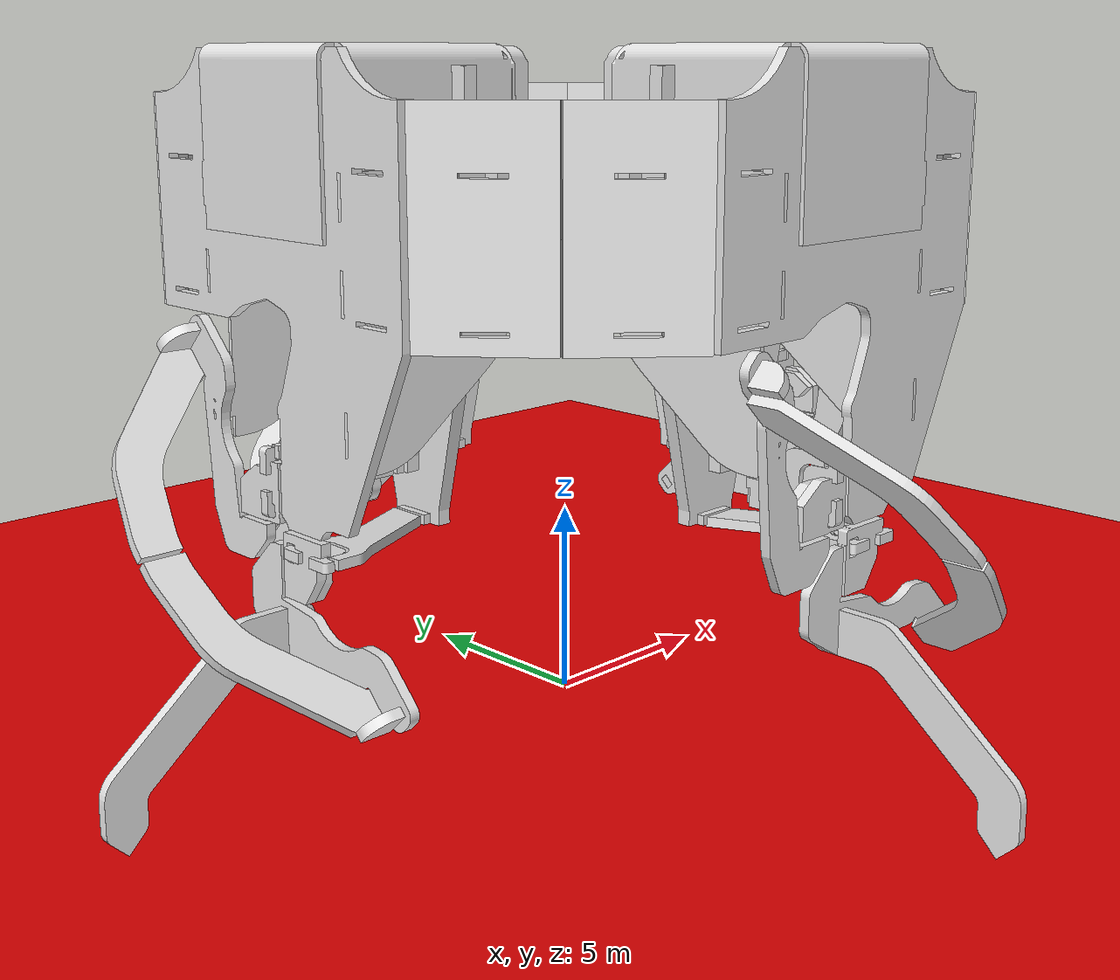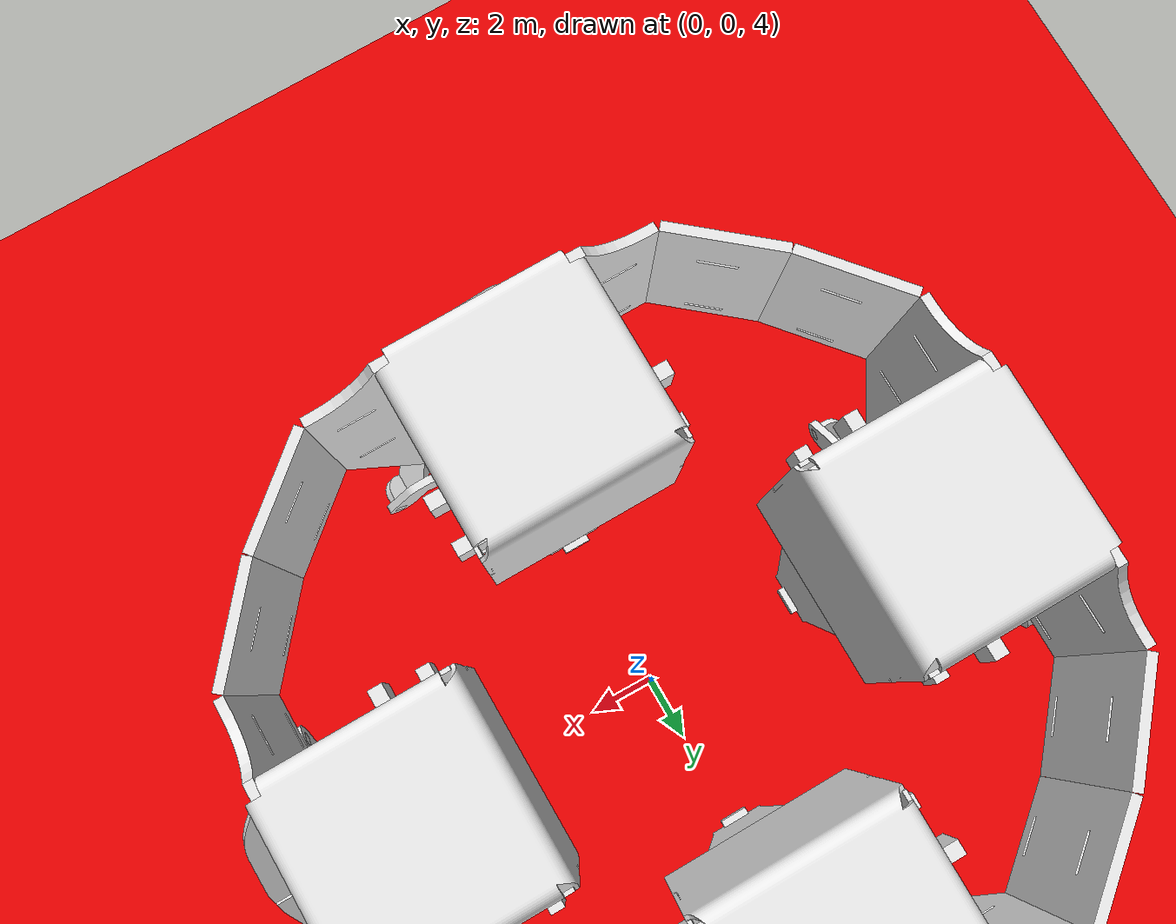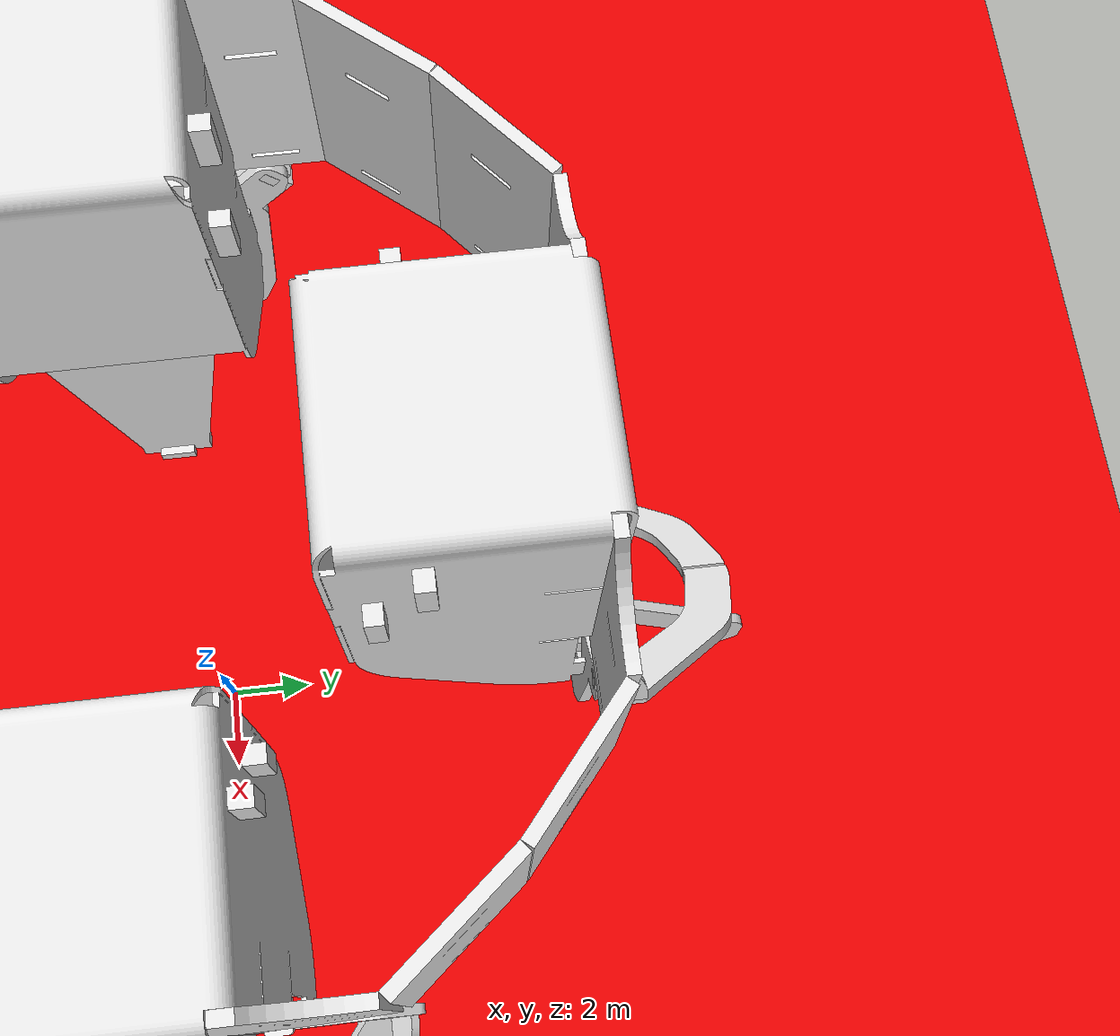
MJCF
<mujoco>
    <asset>
		<mesh file="STL_files/p_leg.STL"/>
		<mesh file="STL_files/p_leg_frame-1.STL"/>
		<mesh file="STL_files/p_leg_frame_segment_extension-1.STL"/>
		<mesh file="STL_files/p_leg_frame_segment_extension-2.STL"/>
		<mesh file="STL_files/p_leg_frame_support-1.STL"/>
		<mesh file="STL_files/p_leg_l_u1-1.STL"/>
		<mesh file="STL_files/p_leg_l_u2-2.STL"/>
		<mesh file="STL_files/p_leg_l_u3-2.STL"/>
		<mesh file="STL_files/p_leg_l_u4-1.STL"/>
		<mesh file="STL_files/p_leg_l_u5-1.STL"/>
		<mesh file="STL_files/p_leg_l_us1-1.STL"/>
		<mesh file="STL_files/p_leg_l_us2-1.STL"/>
		<mesh file="STL_files/p_leg_l_us3-1.STL"/>
		<mesh file="STL_files/p_leg_l_us3-2.STL"/>
		<mesh file="STL_files/p_leg_s_u1-1.STL"/>
		<mesh file="STL_files/p_leg_s_u2-1.STL"/>
		<mesh file="STL_files/p_leg_s_u3-1.STL"/>
		<mesh file="STL_files/p_leg_s_u4-1.STL"/>
		<mesh file="STL_files/p_leg_s_u5-1.STL"/>
		<mesh file="STL_files/p_leg_s_u6-1.STL"/>
		<mesh file="STL_files/p_leg_s_u7-1.STL"/>
		<mesh file="STL_files/p_leg_s_us1-1.STL"/>
		<mesh file="STL_files/p_leg_s_us2-1.STL"/>
		<mesh file="STL_files/p_pcb-1.STL"/>
		<mesh file="STL_files/p_pzt_1_1.STL"/>
		<mesh file="STL_files/p_pzt_1_2.STL"/>
		<mesh file="STL_files/p_pzt_2_1.STL"/>
		<mesh file="STL_files/p_pzt_2_2.STL"/>
	</asset>

    <default>
		<geom density="0.002"/>
	</default>

	<option gravity="0 0 -9.810"/>

	<worldbody>
        <light diffuse="1 1 1" pos="0 0 1000" dir="0 0 -1"/>
		<geom type="plane" size="1000 1000 0.1" rgba=".9 0 0 1"/>
		<camera name="closeup" pos="55.989 33.954 23.285" xyaxes="-0.462 0.887 -0.000 -0.252 -0.131 0.959"/>

        <body pos="-6.985 0.254 0" euler ="90 0 0" name="p_pcb-1_1" >

			<geom type="mesh" mesh="p_pcb-1" rgba="0.9 0.9 0.9 1"/>
			<joint type="free"/>

			<body pos="0 0 0" name="p_pzt_1_1_1">
				<geom type="mesh" mesh="p_pzt_1_1" rgba="0.9 .9 0.9 1" mass="1"/>
				<body pos="0 0 0" name="p_pzt_1_2_1">
					<geom type="mesh" mesh="p_pzt_1_2" rgba="0.9 .9 0.9 1" mass="1"/>
					<joint name="p_pzt_1_1" type="hinge" axis="1 0 0" pos="3.984 14.141 5.13" range="-2.73 2.73"/>
					<site name="p_pzt_1_1_1_1" pos="6.973 6.019 5.156"/>
					<site name="p_pzt_1_1_1_2" pos="7.473 5.919 5.156"/>
					<site name="p_pzt_1_1_1_3" pos="6.473 5.919 5.156"/>
				</body>
			</body>

			<body pos="0 0 0" name="p_pzt_2_1_1">
				<geom type="mesh" mesh="p_pzt_2_1" rgba="0.9 .9 0.9 1" mass="1"/>
				<body pos="0 0 0" name="p_pzt_2_2_1">
					<geom type="mesh" mesh="p_pzt_2_2" rgba="0.9 .9 0.9 1" mass="1"/>
					<joint name="p_pzt_2_1" type="hinge" axis="1 0 0" pos="3.984 15.641 6.05" range="-2.73 2.73"/>
				</body>
			</body>

			<body pos="0 0 0" name="p_leg_frame-1_1">
				<geom type="mesh" mesh="p_leg_frame-1" rgba="0.9 .9 0.9 1"/>

                <!-- extensions for the multi-legged simulation-->
				<body pos="0 0 0" name="p_leg_frame_segment_extension-1_1">
					<geom type="mesh" mesh="p_leg_frame_segment_extension-1" rgba="0.9 .9 0.9 1"/>
				</body>
				<body pos="0 0 0" name="p_leg_frame_segment_extension-2_1">
					<geom type="mesh" mesh="p_leg_frame_segment_extension-2" rgba="0.9 .9 0.9 1"/>
				</body>

                <!-- lift section -->

				<body pos="0 0 0" name="p_leg_l_u1-1_1">
					<geom type="mesh" mesh="p_leg_l_u1-1" rgba="0.9 .9 0.9 1"/>
					<joint type="hinge" limited="true" range="-28.0 28.0" stiffness="20480" springref="0.0" damping="1024" axis="1 0 0" pos="7.885 6.419 9.106"/>
					<body pos="0 0 0">
						<geom type="mesh" mesh="p_leg_l_u2-2" rgba="0.9 .9 0.9 1"/>
					</body>

                    <!-- lift actuator -->

					<body pos="0 0 0" name="p_leg_l_u3-2_1">
						<geom type="mesh" mesh="p_leg_l_u3-2" rgba="0.9 .9 0.9 1"/>
						<body pos="0 0 0" euler ="0 0 0">
							<geom type="mesh" mesh="p_leg_l_u4-1" rgba="0.9 0.9 0.9 1"/>
                            <joint type="hinge" limited="true" range="-28.0 28.0" stiffness="10240" springref="0.0" damping="512" axis="1 0 0" pos="7.986 5.919 9.056"  />
                            <body pos="0 0 0" name="p_leg_l_u5-1_1">
                                <geom type="mesh" mesh="p_leg_l_u5-1" rgba="0.9 .9 0.9 1"/>
                                <joint type="hinge" limited="true" range="-28.0 28.0" stiffness="17067" springref="0.0" damping="853" axis="1 0 0" pos="6.973 5.919 5.556" />
								<site name="p_pzt_1_1_2_1" pos="6.973 6.019 5.156"/>
								<site name="p_pzt_1_1_2_2" pos="7.473 5.919 5.156"/>
								<site name="p_pzt_1_1_2_3" pos="6.473 5.919 5.156"/>
                            </body>
						</body>
					</body>

                    <!-- lift end-effector -->
					<body pos="0 0 0" >
						<geom type="mesh" mesh="p_leg_l_us1-1" rgba="0.9 .9 0.9 1"/>
						<joint type="hinge" limited="true" range="-28.0 28.0" stiffness="20480" springref="0.0" damping="1024" axis="0 1 0" pos="6.985 5.419 9.106"/>
						<body pos="0 0 0">
							<geom type="mesh" mesh="p_leg_l_us3-2" rgba="0.9 .9 0.9 1"/>
							<body pos="0 0 0" name="p_leg_l_us2-1_1">
								<geom type="mesh" mesh="p_leg_l_us2-1" rgba="0.9 .9 0.9 1"/>
							</body>
						</body>
						<body pos="0 0 0" >
							<geom type="mesh" mesh="p_leg" rgba="0.9 .9 0.9 1"/>
						</body>
					</body>

				</body>

                <!-- swing section -->

				<body pos="0 0 0" name="p_leg_s_u1-1_1">

					<geom type="mesh" mesh="p_leg_s_u1-1" rgba="0.9 .9 0.9 1"/>
					<joint type="hinge" limited="true" range="-28.0 28.0" stiffness="20480" springref="0.0" damping="1024" axis="0 1 0" pos="6.985 7.319 9.106"/>
					<body pos="0 0 0">
						<geom type="mesh" mesh="p_leg_s_u2-1" rgba="0.9 .9 0.9 1"/>
					</body>

                    <!-- swing actuator -->

                    <body pos="0 0 0" name="p_leg_s_u3-1_1">
                        <geom type="mesh" mesh="p_leg_s_u3-1" rgba="0.9 .9 0.9 1"/>
                        <body pos="0 0 0" >
                            <geom type="mesh" mesh="p_leg_s_u4-1" rgba="0.9 .9 0.9 1"/>
                            <joint type="hinge" limited="true" range="-28.0 28.0" stiffness="10240" springref="0.0" damping="512" axis="0 1 0" pos="6.535 7.407 9.056"/>
                            <body pos="0 0 0">
                                <geom type="mesh" mesh="p_leg_s_u5-1" rgba="0.9 .9 0.9 1"/>
                                <body pos="0 0 0">
                                    <geom type="mesh" mesh="p_leg_s_u6-1" rgba="0.9 .9 0.9 1"/>
                                    <body pos="0 0 0" name="p_leg_s_u7-1_1">
                                        <geom type="mesh" mesh="p_leg_s_u7-1" rgba="0.9 .9 0.9 1"/>
                                        <joint type="hinge" limited="true" range="-28.0 28.0" stiffness="17067" springref="0.0" damping="853" axis="1 0 0" pos="7.16 7.407 6.479"/>
                                    </body>
                                </body>
                            </body>
                        </body>
                    </body>

                    <!-- swing end-effector -->

                    <body pos="0 0 0" name="p_leg_s_us1-1_1">
						<geom type="mesh" mesh="p_leg_s_us1-1" rgba="0.9 .9 0.9 1"/>
						<joint type="hinge" limited="true" range="-28.0 28.0" stiffness="17067" springref="0.0" damping="853" axis="1 0 0" pos="5.884 6.419 9.106"/>
						<body pos="0 0 0" name = "p_leg_l_us3-1_1">
							<geom type="mesh" mesh="p_leg_l_us3-1" rgba="0.9 .9 0.9 1"/>
						</body>
						<body pos="0 0 0" name = "p_leg_s_us2-1_1">
							<geom type="mesh" mesh="p_leg_s_us2-1" rgba="0.9 .9 0.9 1"/>
						</body>
					</body>
				</body>
			</body>

		</body>

        <body pos="-0.254 -6.985 0" euler ="90 90 0" name="p_pcb-1_2" >

			<geom type="mesh" mesh="p_pcb-1" rgba="0.9 0.9 0.9 1"/>
			<joint type="free"/>

			<body pos="0 0 0" name="p_pzt_1_1_2">
				<geom type="mesh" mesh="p_pzt_1_1" rgba="0.9 .9 0.9 1" mass="1"/>
				<body pos="0 0 0" name="p_pzt_1_2_2">
					<geom type="mesh" mesh="p_pzt_1_2" rgba="0.9 .9 0.9 1" mass="1"/>
					<joint name="p_pzt_1_2" type="hinge" axis="1 0 0" pos="3.984 14.141 5.13" range="-2.73 2.73"/>
				</body>
			</body>

			<body pos="0 0 0" name="p_pzt_2_1_2">
				<geom type="mesh" mesh="p_pzt_2_1" rgba="0.9 .9 0.9 1" mass="1"/>
				<body pos="0 0 0" name="p_pzt_2_2_2">
					<geom type="mesh" mesh="p_pzt_2_2" rgba="0.9 .9 0.9 1" mass="1"/>
					<joint name="p_pzt_2_2" type="hinge" axis="1 0 0" pos="3.984 15.641 6.05" range="-2.73 2.73"/>
				</body>
			</body>

			<body pos="0 0 0" name="p_leg_frame-1_2">
				<geom type="mesh" mesh="p_leg_frame-1" rgba="0.9 .9 0.9 1"/>

                <!-- extensions for the multi-legged simulation-->
				<body pos="0 0 0" name="p_leg_frame_segment_extension-1_2">
					<geom type="mesh" mesh="p_leg_frame_segment_extension-1" rgba="0.9 .9 0.9 1"/>
				</body>
				<body pos="0 0 0" name="p_leg_frame_segment_extension-2_2">
					<geom type="mesh" mesh="p_leg_frame_segment_extension-2" rgba="0.9 .9 0.9 1"/>
				</body>

                <!-- lift section -->

				<body pos="0 0 0" name="p_leg_l_u1-1_2">
					<geom type="mesh" mesh="p_leg_l_u1-1" rgba="0.9 .9 0.9 1"/>
					<joint type="hinge" limited="true" range="-28.0 28.0" stiffness="20480" springref="0.0" damping="1024" axis="1 0 0" pos="7.885 6.419 9.106"/>
					<body pos="0 0 0">
						<geom type="mesh" mesh="p_leg_l_u2-2" rgba="0.9 .9 0.9 1"/>
					</body>

                    <!-- lift actuator -->

					<body pos="0 0 0" name="p_leg_l_u3-2_2">
						<geom type="mesh" mesh="p_leg_l_u3-2" rgba="0.9 .9 0.9 1"/>
						<body pos="0 0 0" euler ="0 0 0">
							<geom type="mesh" mesh="p_leg_l_u4-1" rgba="0.9 0.9 0.9 1"/>
                            <joint type="hinge" limited="true" range="-28.0 28.0" stiffness="10240" springref="0.0" damping="512" axis="1 0 0" pos="7.986 5.919 9.056"  />
                            <body pos="0 0 0" name="p_leg_l_u5-1_2">
                                <geom type="mesh" mesh="p_leg_l_u5-1" rgba="0.9 .9 0.9 1"/>
                                <joint type="hinge" limited="true" range="-28.0 28.0" stiffness="17067" springref="0.0" damping="853" axis="1 0 0" pos="6.973 5.919 5.556" />
                            </body>
						</body>
					</body>

                    <!-- lift end-effector -->
					<body pos="0 0 0" >
						<geom type="mesh" mesh="p_leg_l_us1-1" rgba="0.9 .9 0.9 1"/>
						<joint type="hinge" limited="true" range="-28.0 28.0" stiffness="20480" springref="0.0" damping="1024" axis="0 1 0" pos="6.985 5.419 9.106"/>
						<body pos="0 0 0">
							<geom type="mesh" mesh="p_leg_l_us3-2" rgba="0.9 .9 0.9 1"/>
							<body pos="0 0 0" name="p_leg_l_us2-1_2">
								<geom type="mesh" mesh="p_leg_l_us2-1" rgba="0.9 .9 0.9 1"/>
							</body>
						</body>
						<body pos="0 0 0" >
							<geom type="mesh" mesh="p_leg" rgba="0.9 .9 0.9 1"/>
						</body>
					</body>

				</body>

                <!-- swing section -->

				<body pos="0 0 0" name="p_leg_s_u1-1_2">

					<geom type="mesh" mesh="p_leg_s_u1-1" rgba="0.9 .9 0.9 1"/>
					<joint type="hinge" limited="true" range="-28.0 28.0" stiffness="20480" springref="0.0" damping="1024" axis="0 1 0" pos="6.985 7.319 9.106"/>
					<body pos="0 0 0">
						<geom type="mesh" mesh="p_leg_s_u2-1" rgba="0.9 .9 0.9 1"/>
					</body>

                    <!-- swing actuator -->

                    <body pos="0 0 0" name="p_leg_s_u3-1_2">
                        <geom type="mesh" mesh="p_leg_s_u3-1" rgba="0.9 .9 0.9 1"/>
                        <body pos="0 0 0" >
                            <geom type="mesh" mesh="p_leg_s_u4-1" rgba="0.9 .9 0.9 1"/>
                            <joint type="hinge" limited="true" range="-28.0 28.0" stiffness="10240" springref="0.0" damping="512" axis="0 1 0" pos="6.535 7.407 9.056"/>
                            <body pos="0 0 0">
                                <geom type="mesh" mesh="p_leg_s_u5-1" rgba="0.9 .9 0.9 1"/>
                                <body pos="0 0 0">
                                    <geom type="mesh" mesh="p_leg_s_u6-1" rgba="0.9 .9 0.9 1"/>
                                    <body pos="0 0 0" name="p_leg_s_u7-1_2">
                                        <geom type="mesh" mesh="p_leg_s_u7-1" rgba="0.9 .9 0.9 1"/>
                                        <joint type="hinge" limited="true" range="-28.0 28.0" stiffness="17067" springref="0.0" damping="853" axis="1 0 0" pos="7.16 7.407 6.479"/>
                                    </body>
                                </body>
                            </body>
                        </body>
                    </body>

                    <!-- swing end-effector -->

                    <body pos="0 0 0" name="p_leg_s_us1-1_2">
						<geom type="mesh" mesh="p_leg_s_us1-1" rgba="0.9 .9 0.9 1"/>
						<joint type="hinge" limited="true" range="-28.0 28.0" stiffness="17067" springref="0.0" damping="853" axis="1 0 0" pos="5.884 6.419 9.106"/>
						<body pos="0 0 0" name = "p_leg_l_us3-1_2">
							<geom type="mesh" mesh="p_leg_l_us3-1" rgba="0.9 .9 0.9 1"/>
						</body>
						<body pos="0 0 0" name = "p_leg_s_us2-1_2">
							<geom type="mesh" mesh="p_leg_s_us2-1" rgba="0.9 .9 0.9 1"/>
						</body>
					</body>
				</body>
			</body>

		</body>

        <body pos="6.985 -0.254 0" euler ="90 180 0" name="p_pcb-1_3" >

			<geom type="mesh" mesh="p_pcb-1" rgba="0.9 0.9 0.9 1"/>
			<joint type="free"/>

			<body pos="0 0 0" name="p_pzt_1_1_3">
				<geom type="mesh" mesh="p_pzt_1_1" rgba="0.9 .9 0.9 1" mass="1"/>
				<body pos="0 0 0" name="p_pzt_1_2_3">
					<geom type="mesh" mesh="p_pzt_1_2" rgba="0.9 .9 0.9 1" mass="1"/>
					<joint name="p_pzt_1_3" type="hinge" axis="1 0 0" pos="3.984 14.141 5.13" range="-2.73 2.73"/>
				</body>
			</body>

			<body pos="0 0 0" name="p_pzt_2_1_3">
				<geom type="mesh" mesh="p_pzt_2_1" rgba="0.9 .9 0.9 1" mass="1"/>
				<body pos="0 0 0" name="p_pzt_2_2_3">
					<geom type="mesh" mesh="p_pzt_2_2" rgba="0.9 .9 0.9 1" mass="1"/>
					<joint name="p_pzt_2_3" type="hinge" axis="1 0 0" pos="3.984 15.641 6.05" range="-2.73 2.73"/>
				</body>
			</body>

			<body pos="0 0 0" name="p_leg_frame-1_3">
				<geom type="mesh" mesh="p_leg_frame-1" rgba="0.9 .9 0.9 1"/>

                <!-- extensions for the multi-legged simulation-->
				<body pos="0 0 0" name="p_leg_frame_segment_extension-1_3">
					<geom type="mesh" mesh="p_leg_frame_segment_extension-1" rgba="0.9 .9 0.9 1"/>
				</body>
				<body pos="0 0 0" name="p_leg_frame_segment_extension-2_3">
					<geom type="mesh" mesh="p_leg_frame_segment_extension-2" rgba="0.9 .9 0.9 1"/>
				</body>

                <!-- lift section -->

				<body pos="0 0 0" name="p_leg_l_u1-1_3">
					<geom type="mesh" mesh="p_leg_l_u1-1" rgba="0.9 .9 0.9 1"/>
					<joint type="hinge" limited="true" range="-28.0 28.0" stiffness="20480" springref="0.0" damping="1024" axis="1 0 0" pos="7.885 6.419 9.106"/>
					<body pos="0 0 0">
						<geom type="mesh" mesh="p_leg_l_u2-2" rgba="0.9 .9 0.9 1"/>
					</body>

                    <!-- lift actuator -->

					<body pos="0 0 0" name="p_leg_l_u3-2_3">
						<geom type="mesh" mesh="p_leg_l_u3-2" rgba="0.9 .9 0.9 1"/>
						<body pos="0 0 0" euler ="0 0 0">
							<geom type="mesh" mesh="p_leg_l_u4-1" rgba="0.9 0.9 0.9 1"/>
                            <joint type="hinge" limited="true" range="-28.0 28.0" stiffness="10240" springref="0.0" damping="512" axis="1 0 0" pos="7.986 5.919 9.056"  />
                            <body pos="0 0 0" name="p_leg_l_u5-1_3">
                                <geom type="mesh" mesh="p_leg_l_u5-1" rgba="0.9 .9 0.9 1"/>
                                <joint type="hinge" limited="true" range="-28.0 28.0" stiffness="17067" springref="0.0" damping="853" axis="1 0 0" pos="6.973 5.919 5.556" />
                            </body>
						</body>
					</body>

                    <!-- lift end-effector -->
					<body pos="0 0 0" >
						<geom type="mesh" mesh="p_leg_l_us1-1" rgba="0.9 .9 0.9 1"/>
						<joint type="hinge" limited="true" range="-28.0 28.0" stiffness="20480" springref="0.0" damping="1024" axis="0 1 0" pos="6.985 5.419 9.106"/>
						<body pos="0 0 0">
							<geom type="mesh" mesh="p_leg_l_us3-2" rgba="0.9 .9 0.9 1"/>
							<body pos="0 0 0" name="p_leg_l_us2-1_3">
								<geom type="mesh" mesh="p_leg_l_us2-1" rgba="0.9 .9 0.9 1"/>
							</body>
						</body>
						<body pos="0 0 0" >
							<geom type="mesh" mesh="p_leg" rgba="0.9 .9 0.9 1"/>
						</body>
					</body>

				</body>

                <!-- swing section -->

				<body pos="0 0 0" name="p_leg_s_u1-1_3">

					<geom type="mesh" mesh="p_leg_s_u1-1" rgba="0.9 .9 0.9 1"/>
					<joint type="hinge" limited="true" range="-28.0 28.0" stiffness="20480" springref="0.0" damping="1024" axis="0 1 0" pos="6.985 7.319 9.106"/>
					<body pos="0 0 0">
						<geom type="mesh" mesh="p_leg_s_u2-1" rgba="0.9 .9 0.9 1"/>
					</body>

                    <!-- swing actuator -->

                    <body pos="0 0 0" name="p_leg_s_u3-1_3">
                        <geom type="mesh" mesh="p_leg_s_u3-1" rgba="0.9 .9 0.9 1"/>
                        <body pos="0 0 0" >
                            <geom type="mesh" mesh="p_leg_s_u4-1" rgba="0.9 .9 0.9 1"/>
                            <joint type="hinge" limited="true" range="-28.0 28.0" stiffness="10240" springref="0.0" damping="512" axis="0 1 0" pos="6.535 7.407 9.056"/>
                            <body pos="0 0 0">
                                <geom type="mesh" mesh="p_leg_s_u5-1" rgba="0.9 .9 0.9 1"/>
                                <body pos="0 0 0">
                                    <geom type="mesh" mesh="p_leg_s_u6-1" rgba="0.9 .9 0.9 1"/>
                                    <body pos="0 0 0" name="p_leg_s_u7-1_3">
                                        <geom type="mesh" mesh="p_leg_s_u7-1" rgba="0.9 .9 0.9 1"/>
                                        <joint type="hinge" limited="true" range="-28.0 28.0" stiffness="17067" springref="0.0" damping="853" axis="1 0 0" pos="7.16 7.407 6.479"/>
                                    </body>
                                </body>
                            </body>
                        </body>
                    </body>

                    <!-- swing end-effector -->

                    <body pos="0 0 0" name="p_leg_s_us1-1_3">
						<geom type="mesh" mesh="p_leg_s_us1-1" rgba="0.9 .9 0.9 1"/>
						<joint type="hinge" limited="true" range="-28.0 28.0" stiffness="17067" springref="0.0" damping="853" axis="1 0 0" pos="5.884 6.419 9.106"/>
						<body pos="0 0 0" name = "p_leg_l_us3-1_3">
							<geom type="mesh" mesh="p_leg_l_us3-1" rgba="0.9 .9 0.9 1"/>
						</body>
						<body pos="0 0 0" name = "p_leg_s_us2-1_3">
							<geom type="mesh" mesh="p_leg_s_us2-1" rgba="0.9 .9 0.9 1"/>
						</body>
					</body>
				</body>
			</body>

		</body>

        <body pos="0.254 6.985 0" euler ="90 270 0" name="p_pcb-1_4" >

			<geom type="mesh" mesh="p_pcb-1" rgba="0.9 .9 0.9 1"/>
			<joint type="free"/>

			<body pos="0 0 0" name="p_pzt_1_1_4">
				<geom type="mesh" mesh="p_pzt_1_1" rgba="0.9 .9 0.9 1" mass="1"/>
				<body pos="0 0 0" name="p_pzt_1_2_4">
					<geom type="mesh" mesh="p_pzt_1_2" rgba="0.9 .9 0.9 1" mass="1"/>
					<joint name="p_pzt_1_4" type="hinge" axis="1 0 0" pos="3.984 14.141 5.13" range="-2.73 2.73"/>
				</body>
			</body>

			<body pos="0 0 0" name="p_pzt_2_1_4">
				<geom type="mesh" mesh="p_pzt_2_1" rgba="0.9 .9 0.9 1" mass="1"/>
				<body pos="0 0 0" name="p_pzt_2_2_4">
					<geom type="mesh" mesh="p_pzt_2_2" rgba="0.9 .9 0.9 1" mass="1"/>
					<joint name="p_pzt_2_4" type="hinge" axis="1 0 0" pos="3.984 15.641 6.05" range="-2.73 2.73"/>
				</body>
			</body>

			<body pos="0 0 0" name="p_leg_frame-1_4">
				<geom type="mesh" mesh="p_leg_frame-1" rgba="0.9 .9 0.9 1"/>

                <!-- extensions for the multi-legged simulation-->
				<body pos="0 0 0" name="p_leg_frame_segment_extension-1_4">
					<geom type="mesh" mesh="p_leg_frame_segment_extension-1" rgba="0.9 .9 0.9 1"/>
				</body>
				<body pos="0 0 0" name="p_leg_frame_segment_extension-2_4">
					<geom type="mesh" mesh="p_leg_frame_segment_extension-2" rgba="0.9 .9 0.9 1"/>
				</body>

                <!-- lift section -->

				<body pos="0 0 0" name="p_leg_l_u1-1_4">
					<geom type="mesh" mesh="p_leg_l_u1-1" rgba="0.9 .9 0.9 1"/>
					<joint type="hinge" limited="true" range="-28.0 28.0" stiffness="20480" springref="0.0" damping="1024" axis="1 0 0" pos="7.885 6.419 9.106"/>
					<body pos="0 0 0">
						<geom type="mesh" mesh="p_leg_l_u2-2" rgba="0.9 .9 0.9 1"/>
					</body>

                    <!-- lift actuator -->

					<body pos="0 0 0" name="p_leg_l_u3-2_4">
						<geom type="mesh" mesh="p_leg_l_u3-2" rgba="0.9 .9 0.9 1"/>
						<body pos="0 0 0" euler ="0 0 0">
							<geom type="mesh" mesh="p_leg_l_u4-1" rgba="0.9 0.9 0.9 1"/>
                            <joint type="hinge" limited="true" range="-28.0 28.0" stiffness="10240" springref="0.0" damping="512" axis="1 0 0" pos="7.986 5.919 9.056"  />
                            <body pos="0 0 0" name="p_leg_l_u5-1_4">
                                <geom type="mesh" mesh="p_leg_l_u5-1" rgba="0.9 .9 0.9 1"/>
                                <joint type="hinge" limited="true" range="-28.0 28.0" stiffness="17067" springref="0.0" damping="853" axis="1 0 0" pos="6.973 5.919 5.556" />
                            </body>
						</body>
					</body>

                    <!-- lift end-effector -->
					<body pos="0 0 0" >
						<geom type="mesh" mesh="p_leg_l_us1-1" rgba="0.9 .9 0.9 1"/>
						<joint type="hinge" limited="true" range="-28.0 28.0" stiffness="20480" springref="0.0" damping="1024" axis="0 1 0" pos="6.985 5.419 9.106"/>
						<body pos="0 0 0">
							<geom type="mesh" mesh="p_leg_l_us3-2" rgba="0.9 .9 0.9 1"/>
							<body pos="0 0 0" name="p_leg_l_us2-1_4">
								<geom type="mesh" mesh="p_leg_l_us2-1" rgba="0.9 .9 0.9 1"/>
							</body>
						</body>
						<body pos="0 0 0" >
							<geom type="mesh" mesh="p_leg" rgba="0.9 .9 0.9 1"/>
						</body>
					</body>

				</body>

                <!-- swing section -->

				<body pos="0 0 0" name="p_leg_s_u1-1_4">

					<geom type="mesh" mesh="p_leg_s_u1-1" rgba="0.9 .9 0.9 1"/>
					<joint type="hinge" limited="true" range="-28.0 28.0" stiffness="20480" springref="0.0" damping="1024" axis="0 1 0" pos="6.985 7.319 9.106"/>
					<body pos="0 0 0">
						<geom type="mesh" mesh="p_leg_s_u2-1" rgba="0.9 .9 0.9 1"/>
					</body>

                    <!-- swing actuator -->

                    <body pos="0 0 0" name="p_leg_s_u3-1_4">
                        <geom type="mesh" mesh="p_leg_s_u3-1" rgba="0.9 .9 0.9 1"/>
                        <body pos="0 0 0" >
                            <geom type="mesh" mesh="p_leg_s_u4-1" rgba="0.9 .9 0.9 1"/>
                            <joint type="hinge" limited="true" range="-28.0 28.0" stiffness="10240" springref="0.0" damping="512" axis="0 1 0" pos="6.535 7.407 9.056"/>
                            <body pos="0 0 0">
                                <geom type="mesh" mesh="p_leg_s_u5-1" rgba="0.9 .9 0.9 1"/>
                                <body pos="0 0 0">
                                    <geom type="mesh" mesh="p_leg_s_u6-1" rgba="0.9 .9 0.9 1"/>
                                    <body pos="0 0 0" name="p_leg_s_u7-1_4">
                                        <geom type="mesh" mesh="p_leg_s_u7-1" rgba="0.9 .9 0.9 1"/>
                                        <joint type="hinge" limited="true" range="-28.0 28.0" stiffness="17067" springref="0.0" damping="853" axis="1 0 0" pos="7.16 7.407 6.479"/>
                                    </body>
                                </body>
                            </body>
                        </body>
                    </body>

                    <!-- swing end-effector -->

                    <body pos="0 0 0" name="p_leg_s_us1-1_4">
						<geom type="mesh" mesh="p_leg_s_us1-1" rgba="0.9 .9 0.9 1"/>
						<joint type="hinge" limited="true" range="-28.0 28.0" stiffness="17067" springref="0.0" damping="853" axis="1 0 0" pos="5.884 6.419 9.106"/>
						<body pos="0 0 0" name = "p_leg_l_us3-1_4">
							<geom type="mesh" mesh="p_leg_l_us3-1" rgba="0.9 .9 0.9 1"/>
						</body>
						<body pos="0 0 0" name = "p_leg_s_us2-1_4">
							<geom type="mesh" mesh="p_leg_s_us2-1" rgba="0.9 .9 0.9 1"/>
						</body>
					</body>
				</body>
			</body>

		</body>

	</worldbody>

    <!-- equalities-->

    <equality>
		<!-- leg1-->
		<connect name="link_bar_1" body1="p_leg_l_us2-1_1" body2="p_leg_s_us2-1_1" anchor=" 6.9855 6.4195 12.256 "/>
		<connect name="pzt_1_1_1" body1="p_pzt_1_2_1" body2="p_leg_l_u5-1_1" anchor="6.973 6.019 5.156"/>
		<connect name="pzt_1_1_2" body1="p_pzt_1_2_1" body2="p_leg_l_u5-1_1" anchor="7.473 5.919 5.156"/>
		<connect name="pzt_1_1_3" body1="p_pzt_1_2_1" body2="p_leg_l_u5-1_1" anchor="6.473 5.919 5.156"/>
		<connect name="pzt_2_1_1" body1="p_pzt_2_2_1" body2="p_leg_s_u7-1_1" anchor="7.16 7.507 5.979" />
		<connect name="pzt_2_1_2" body1="p_pzt_2_2_1" body2="p_leg_s_u7-1_1" anchor="7.66 7.407 5.979" />
		<connect name="pzt_2_1_3" body1="p_pzt_2_2_1" body2="p_leg_s_u7-1_1" anchor="6.66 7.407 5.979" />
		<!--weld name="pcb_1_1" body1="p_pcb-1_1" body2="p_leg_s_us1-1_1" /-->
		<!-- leg2-->
		<connect name="link_bar_2" body1="p_leg_l_us2-1_2" body2="p_leg_s_us2-1_2" anchor=" 6.9855 6.4195 12.256 "/>
		<connect name="pzt_1_2_1" body1="p_pzt_1_2_2" body2="p_leg_l_u5-1_2" anchor="6.973 6.019 5.156"/>
		<connect name="pzt_1_2_2" body1="p_pzt_1_2_2" body2="p_leg_l_u5-1_2" anchor="7.473 5.919 5.156"/>
		<connect name="pzt_1_2_3" body1="p_pzt_1_2_2" body2="p_leg_l_u5-1_2" anchor="6.473 5.919 5.156"/>
		<connect name="pzt_2_2_1" body1="p_pzt_2_2_2" body2="p_leg_s_u7-1_2" anchor="7.16 7.507 5.979" />
		<connect name="pzt_2_2_2" body1="p_pzt_2_2_2" body2="p_leg_s_u7-1_2" anchor="7.66 7.407 5.979" />
		<connect name="pzt_2_2_3" body1="p_pzt_2_2_2" body2="p_leg_s_u7-1_2" anchor="6.66 7.407 5.979" />
		<!--weld name="pcb_2" body1="p_pcb-1_2" body2="p_leg_s_us1-1_2" /-->
		<!-- leg3-->
		<connect name="link_bar_3" body1="p_leg_l_us2-1_3" body2="p_leg_s_us2-1_3" anchor=" 6.9855 6.4195 12.256 "/>
		<connect name="pzt_1_3_1" body1="p_pzt_1_2_3" body2="p_leg_l_u5-1_3" anchor="6.973 6.019 5.156"/>
		<connect name="pzt_1_3_2" body1="p_pzt_1_2_3" body2="p_leg_l_u5-1_3" anchor="7.473 5.919 5.156"/>
		<connect name="pzt_1_3_3" body1="p_pzt_1_2_3" body2="p_leg_l_u5-1_3" anchor="6.473 5.919 5.156"/>
		<connect name="pzt_2_3_1" body1="p_pzt_2_2_3" body2="p_leg_s_u7-1_3" anchor="7.16 7.507 5.979" />
		<connect name="pzt_2_3_2" body1="p_pzt_2_2_3" body2="p_leg_s_u7-1_3" anchor="7.66 7.407 5.979" />
		<connect name="pzt_2_3_3" body1="p_pzt_2_2_3" body2="p_leg_s_u7-1_3" anchor="6.66 7.407 5.979" />
		<!--weld name="pcb_3" body1="p_pcb-1_3" body2="p_leg_s_us1-1_3" /-->
		<!-- leg4-->
		<connect name="link_bar_4" body1="p_leg_l_us2-1_4" body2="p_leg_s_us2-1_4" anchor=" 6.9855 6.4195 12.256 "/>
		<connect name="pzt_1_4_1" body1="p_pzt_1_2_4" body2="p_leg_l_u5-1_4" anchor="6.973 6.019 5.156"/>
		<connect name="pzt_1_4_2" body1="p_pzt_1_2_4" body2="p_leg_l_u5-1_4" anchor="7.473 5.919 5.156"/>
		<connect name="pzt_1_4_3" body1="p_pzt_1_2_4" body2="p_leg_l_u5-1_4" anchor="6.473 5.919 5.156"/>
		<connect name="pzt_2_4_1" body1="p_pzt_2_2_4" body2="p_leg_s_u7-1_4" anchor="7.16 7.507 5.979" />
		<connect name="pzt_2_4_2" body1="p_pzt_2_2_4" body2="p_leg_s_u7-1_4" anchor="7.66 7.407 5.979" />
		<connect name="pzt_2_4_3" body1="p_pzt_2_2_4" body2="p_leg_s_u7-1_4" anchor="6.66 7.407 5.979" />
		<!--weld name="pcb_4" body1="p_pcb-1_4" body2="p_leg_s_us1-1_4" /-->
		<!-- interleg-->
		<connect name="joint_1_1" body1="p_leg_frame_segment_extension-1_1" body2="p_leg_frame_segment_extension-2_4" anchor=" 0.184 16.021 7.05 "/>
		<connect name="joint_1_2" body1="p_leg_frame_segment_extension-1_1" body2="p_leg_frame_segment_extension-2_4" anchor=" 0.184 11.021 7.05 "/>
		<connect name="joint_2_1" body1="p_leg_frame_segment_extension-1_4" body2="p_leg_frame_segment_extension-2_3" anchor=" 0.184 16.021 7.05 "/>
		<connect name="joint_2_2" body1="p_leg_frame_segment_extension-1_4" body2="p_leg_frame_segment_extension-2_3" anchor=" 0.184 11.021 7.05 "/>
		<connect name="joint_3_1" body1="p_leg_frame_segment_extension-1_3" body2="p_leg_frame_segment_extension-2_2" anchor=" 0.184 16.021 7.05 "/>
		<connect name="joint_3_2" body1="p_leg_frame_segment_extension-1_3" body2="p_leg_frame_segment_extension-2_2" anchor=" 0.184 11.021 7.05 "/>
		<connect name="joint_4_1" body1="p_leg_frame_segment_extension-1_2" body2="p_leg_frame_segment_extension-2_1" anchor=" 0.184 16.021 7.05 "/>
		<connect name="joint_4_2" body1="p_leg_frame_segment_extension-1_2" body2="p_leg_frame_segment_extension-2_1" anchor=" 0.184 11.021 7.05 "/>
	</equality>

	<!-- actuators -->

	<actuator>
		<motor name="a_pzt_1_1" joint="p_pzt_1_1" gear="500" />
		<motor name="a_pzt_2_1" joint="p_pzt_2_1" gear="500" />
		<motor name="a_pzt_1_2" joint="p_pzt_1_2" gear="500" />
		<motor name="a_pzt_2_2" joint="p_pzt_2_2" gear="500" />
		<motor name="a_pzt_3_1" joint="p_pzt_1_3" gear="500" />
		<motor name="a_pzt_3_2" joint="p_pzt_2_3" gear="500" />
		<motor name="a_pzt_4_1" joint="p_pzt_1_4" gear="500" />
		<motor name="a_pzt_4_2" joint="p_pzt_2_4" gear="500" />
	</actuator>

</mujoco>
